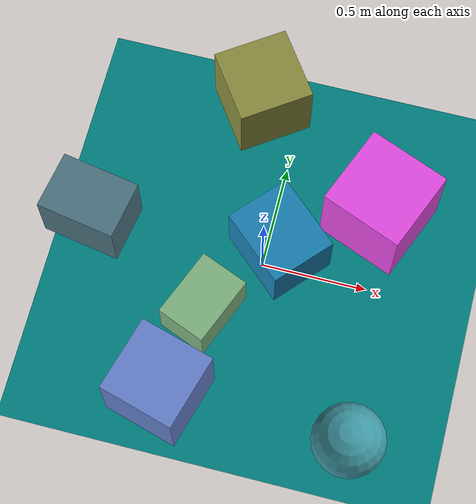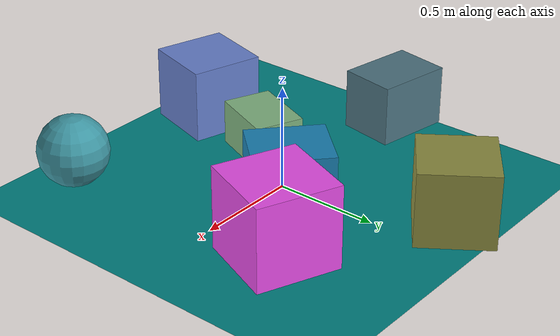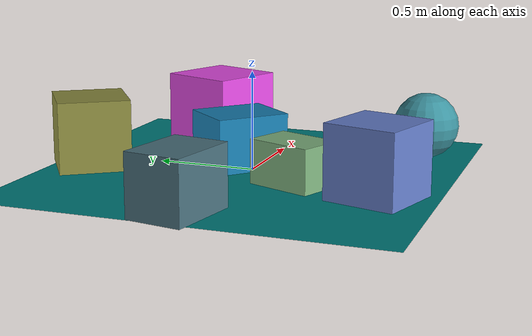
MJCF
<mujoco>
   <asset>
<texture type="skybox" builtin="gradient" rgb1="0.8 1.0 0.1" rgb2="0.3 0.5 0.3" width="500" height="500"/>
<texture name="checker_0" builtin="checker" rgb1="0.4 0.4 0.0" rgb2="0.7 0.7 0.5" width="500" height="500"/>
<texture name="flat_1" builtin="flat" rgb1="0.5 0.7 0.5" rgb2="0.5 0.7 0.5"  width="500" height="500"/>
<texture name="flat_2" builtin="flat" rgb1="0.9 0.3 0.9" rgb2="0.9 0.3 0.9"  width="500" height="500"/>
<texture name="gradient_3" builtin="gradient" rgb1="0.4 0.8 0.8" rgb2="0.2 0.1 0.2" width="500" height="500"/>
<texture name="flat_4" builtin="flat" rgb1="0.1 0.5 0.7" rgb2="0.1 0.5 0.7"  width="500" height="500"/>
<texture name="flat_5" builtin="flat" rgb1="0.4 0.5 0.8" rgb2="0.4 0.5 0.8"  width="500" height="500"/>
<texture name="gradient_6" builtin="gradient" rgb1="0.3 0.4 0.6" rgb2="0.2 0.8 0.7" width="500" height="500"/><material name="checker_0_mat" reflectance="0.8939345000054958" texrepeat="3 3" texture="checker_0" texuniform="false" />
<material name="flat_1_mat" reflectance="0.3764467833000731" texture="flat_1" texuniform="true"/>
<material name="flat_2_mat" reflectance="0.6857057829096338" texture="flat_2" texuniform="true"/>
<material name="gradient_3_mat" reflectance="0.9620790182965568" texture="gradient_3" texuniform="true"/>
<material name="flat_4_mat" reflectance="0.5359758474512872" texture="flat_4" texuniform="true"/>
<material name="flat_5_mat" reflectance="0.13885879641365517" texture="flat_5" texuniform="true"/>
<material name="gradient_6_mat" reflectance="0.08911557953685656" texture="gradient_6" texuniform="true"/>
   </asset>

   <worldbody>
     <geom type="plane" size="1 1 0.1" rgba="0.0 0.5 0.5 1" />
<light pos="0.01362168266969288 0.7062261585547502 2" dir="0 0 -1" cutoff="90" diffuse="1 1 1" specular="1 1 1"/>
<geom type="box" pos="-0.2 0.8 0.18" size="0.18 0.18 0.18" material="checker_0_mat" euler="0 0 35" />
<geom type="box" pos="-0.21 -0.29 0.11" size="0.17 0.12 0.11" material="flat_1_mat" euler="0 0 68" />
<geom type="box" pos="0.48 0.36 0.2" size="0.2 0.2 0.2" material="flat_2_mat" euler="0 0 68" />
<geom type="box" pos="-0.84 0.03 0.15" size="0.14 0.19 0.15" material="gradient_3_mat" euler="0 0 80" />
<geom type="box" pos="0.06 0.09 0.14" size="0.16 0.19 0.14" material="flat_4_mat" euler="0 0 48" />
<geom type="box" pos="-0.3 -0.72 0.18" size="0.18 0.18 0.18" material="flat_5_mat" euler="0 0 74" />
<geom type="sphere" pos="0.58 -0.76 0.17" size="0.17 0.17 0.17" material="gradient_6_mat" euler="0 0 63" /><camera euler="60 0 180" fovy="60" name="camera1" pos="-0.2 -1.5 1"></camera>   </worldbody>
   <visual>
      <headlight diffuse="0.7 0.7 0.7"/>
   </visual>
</mujoco>
